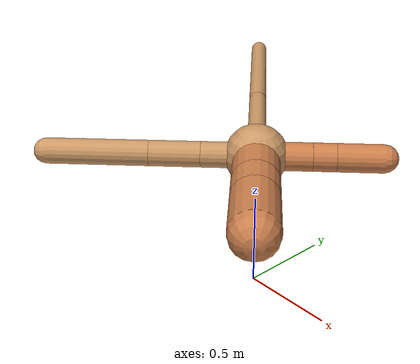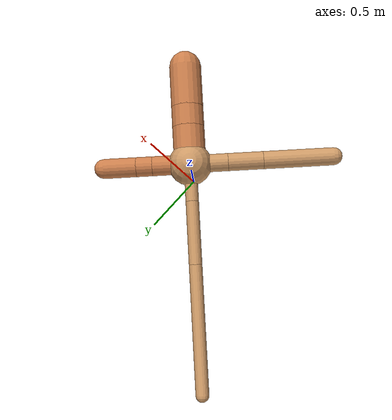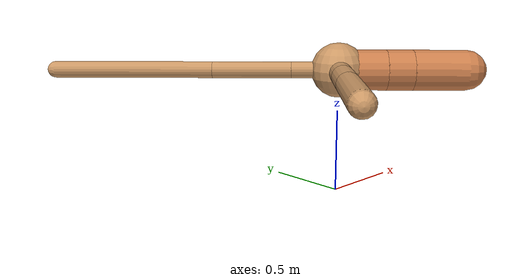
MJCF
<?xml version="1.0" ?>
<mujoco model="ant">

	<compiler angle="degree" coordinate="local" inertiafromgeom="true"/>

	<option integrator="RK4" timestep="0.01"/>

	<custom>

		<numeric data="0.0 0.0 0.55 1.0 0.0 0.0 0.0 0.0 1.0 0.0 -1.0 0.0 -1.0 0.0 1.0" name="init_qpos"/>

	</custom>

	<default>

		<joint armature="1" damping="1" limited="true"/>

		<geom conaffinity="0" condim="3" density="5.0" friction="1.5 0.1 0.1" margin="0.01" rgba="0.8 0.6 0.4 1"/>

	</default>

	<worldbody>

		<body name="torso" pos="0 0 0.75">

			<geom name="torso_geom" pos="0 0 0" size="0.16352930199160115" type="sphere"/>

			<!--joint armature="0" damping="0" limited="false" margin="0.01" name="root" pos="0 0 0" type="free"/-->

			<body name="front_left_leg" pos="0 0 0">

				<geom fromto="0 0 0 0.2 0.2 0" name="aux_1_geom" size="0.07331726128866684" type="capsule" rgba=".8 .5 .3 1"/>

				<body name="aux_1" pos="0.2 0.2 0">

					<joint axis="0 0 1" name="hip_1" pos="0.0 0.0 0.0" range="-40 40" type="hinge"/>

					<geom fromto="0 0 0 0.08489256396106766 0.08489256396106766 0" name="left_leg_geom" size="0.07331726128866684" type="capsule" rgba=".8 .5 .3 1"/>

					<body pos="0.08489256396106766 0.08489256396106766 0" name="front_left_foot">

						<joint axis="-1 1 0" name="ankle_1" pos="0.0 0.0 0.0" range="30 100" type="hinge"/>

						<geom fromto="0 0 0 0.16978512792213532 0.16978512792213532 0" name="left_ankle_geom" size="0.07331726128866684" type="capsule" rgba=".8 .5 .3 1"/>

					</body>

				</body>

			</body>

			<body name="front_right_leg" pos="0 0 0">

				<geom fromto="0 0 0 -0.2 0.2 0" name="aux_2_geom" size="0.04931300872522842" type="capsule"/>

				<body name="aux_2" pos="-0.2 0.2 0">

					<joint axis="0 0 1" name="hip_2" pos="0.0 0.0 0.0" range="-40 40" type="hinge"/>

					<geom fromto="0 0 0 -0.3330610142849959 0.3330610142849959 0" name="right_leg_geom" size="0.04931300872522842" type="capsule"/>

					<body pos="-0.3330610142849959 0.3330610142849959 0" name="front_right_foot">

						<joint axis="1 1 0" name="ankle_2" pos="0.0 0.0 0.0" range="-100 -30" type="hinge"/>

						<geom fromto="0 0 0 -0.6661220285699918 0.6661220285699918 0" name="right_ankle_geom" size="0.04931300872522842" type="capsule"/>

					</body>

				</body>

			</body>

			<body name="left_back_leg" pos="0 0 0">

				<geom fromto="0 0 0 -0.2 -0.2 0" name="aux_3_geom" size="0.06652643309518508" type="capsule"/>

				<body name="aux_3" pos="-0.2 -0.2 0">

					<joint axis="0 0 1" name="hip_3" pos="0.0 0.0 0.0" range="-40 40" type="hinge"/>

					<geom fromto="0 0 0 -0.1868144941595769 -0.1868144941595769 0" name="back_leg_geom" size="0.06652643309518508" type="capsule"/>

					<body pos="-0.1868144941595769 -0.1868144941595769 0" name="left_back_foot">

						<joint axis="-1 1 0" name="ankle_3" pos="0.0 0.0 0.0" range="-100 -30" type="hinge"/>

						<geom fromto="0 0 0 -0.3736289883191538 -0.3736289883191538 0" name="third_ankle_geom" size="0.06652643309518508" type="capsule"/>

					</body>

				</body>

			</body>

			<body name="right_back_leg" pos="0 0 0">

				<geom fromto="0 0 0 0.2 -0.2 0" name="aux_4_geom" size="0.12093540980330375" type="capsule" rgba=".8 .5 .3 1"/>

				<body name="aux_4" pos="0.2 -0.2 0">

					<joint axis="0 0 1" name="hip_4" pos="0.0 0.0 0.0" range="-40 40" type="hinge"/>

					<geom fromto="0 0 0 0.11075856075738964 -0.11075856075738964 0" name="rightback_leg_geom" size="0.12093540980330375" type="capsule" rgba=".8 .5 .3 1"/>

					<body pos="0.11075856075738964 -0.11075856075738964 0" name="right_back_foot">

						<joint axis="1 1 0" name="ankle_4" pos="0.0 0.0 0.0" range="30 100" type="hinge"/>

						<geom fromto="0 0 0 0.22151712151477929 -0.22151712151477929 0" name="fourth_ankle_geom" size="0.12093540980330375" type="capsule" rgba=".8 .5 .3 1"/>

					</body>

				</body>

			</body>

		</body>

	</worldbody>

	<actuator>

		<motor ctrllimited="true" ctrlrange="-1.0 1.0" joint="hip_4" gear="150"/>

		<motor ctrllimited="true" ctrlrange="-1.0 1.0" joint="ankle_4" gear="150"/>

		<motor ctrllimited="true" ctrlrange="-1.0 1.0" joint="hip_1" gear="150"/>

		<motor ctrllimited="true" ctrlrange="-1.0 1.0" joint="ankle_1" gear="150"/>

		<motor ctrllimited="true" ctrlrange="-1.0 1.0" joint="hip_2" gear="150"/>

		<motor ctrllimited="true" ctrlrange="-1.0 1.0" joint="ankle_2" gear="150"/>

		<motor ctrllimited="true" ctrlrange="-1.0 1.0" joint="hip_3" gear="150"/>

		<motor ctrllimited="true" ctrlrange="-1.0 1.0" joint="ankle_3" gear="150"/>

	</actuator>

</mujoco>
